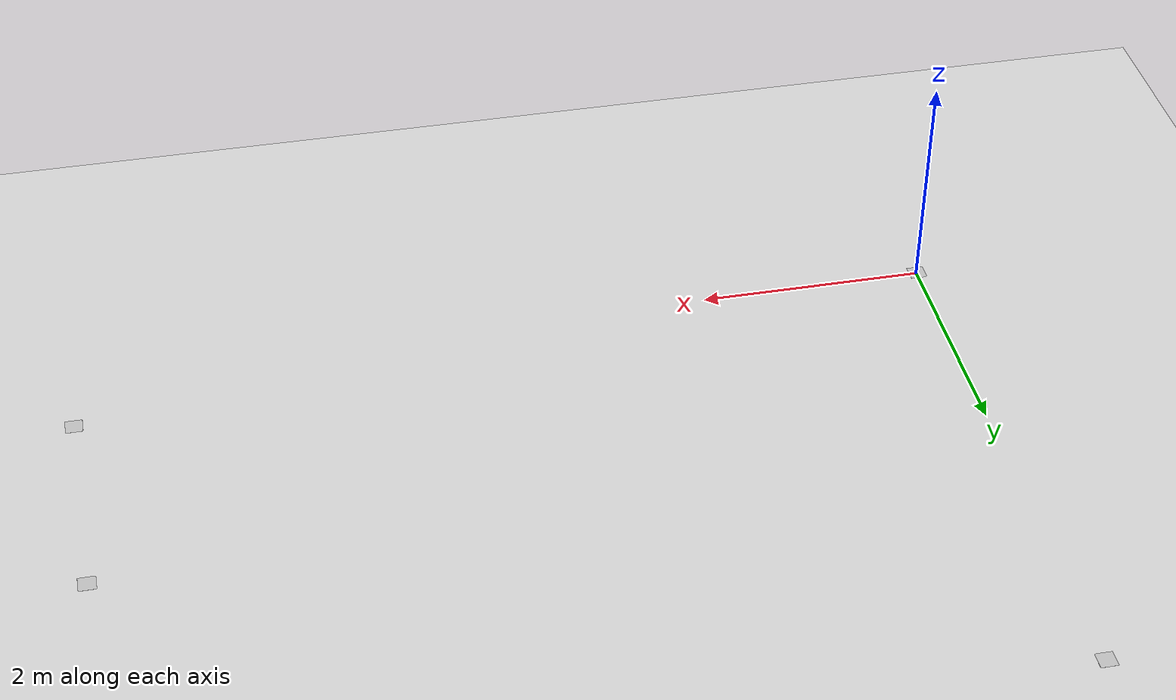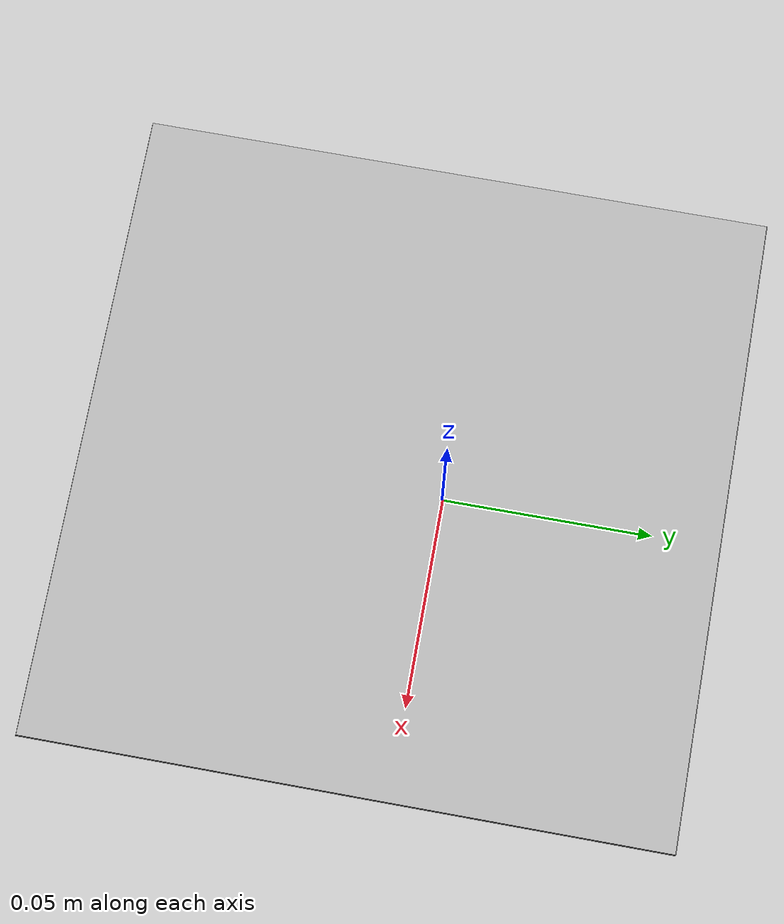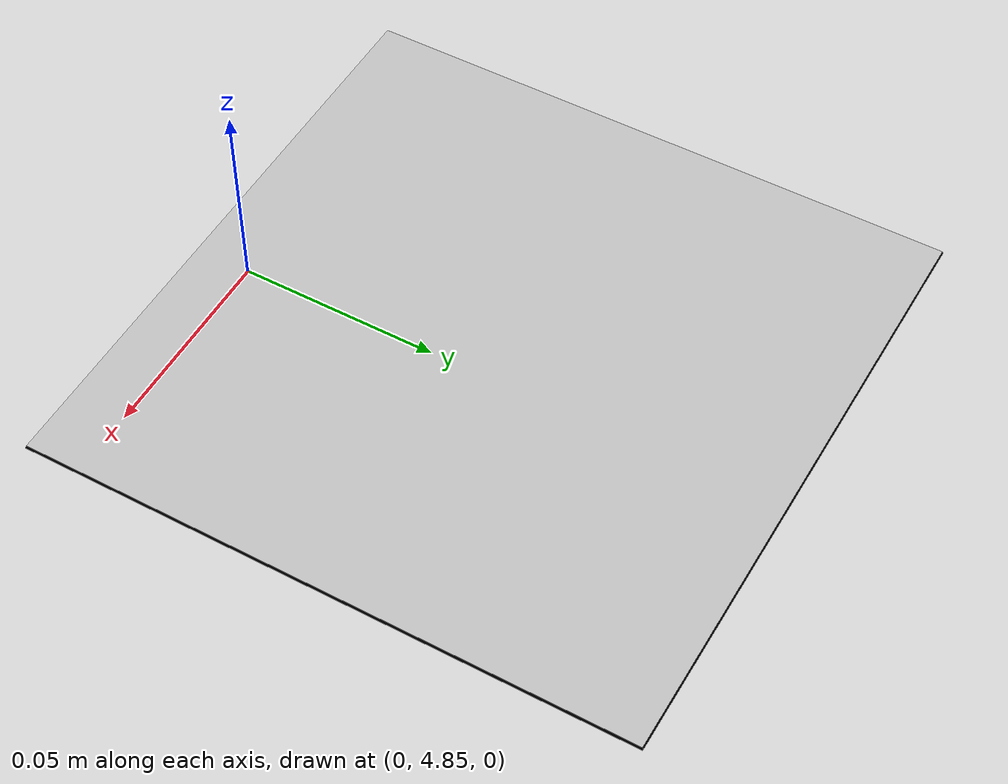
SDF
<sdf version='1.10'>
  <world name='poster'>
    <physics type='ode'>
      <max_step_size>0.0040000000000000001</max_step_size>
      <real_time_factor>1</real_time_factor>
      <real_time_update_rate>250</real_time_update_rate>
    </physics>
    <plugin name='gz::sim::systems::Physics' filename='gz-sim-physics-system'/>
    <plugin name='gz::sim::systems::UserCommands' filename='gz-sim-user-commands-system'/>
    <plugin name='gz::sim::systems::SceneBroadcaster' filename='gz-sim-scene-broadcaster-system'/>
    <plugin name='gz::sim::systems::Contact' filename='gz-sim-contact-system'/>
    <plugin name='gz::sim::systems::Imu' filename='gz-sim-imu-system'/>
    <plugin name='gz::sim::systems::AirPressure' filename='gz-sim-air-pressure-system'/>
    <plugin name='gz::sim::systems::AirSpeed' filename='gz-sim-air-speed-system'/>
    <plugin name='gz::sim::systems::ApplyLinkWrench' filename='gz-sim-apply-link-wrench-system'/>
    <plugin name='gz::sim::systems::NavSat' filename='gz-sim-navsat-system'/>
    <plugin name='gz::sim::systems::Sensors' filename='gz-sim-sensors-system'>
      <render_engine>ogre2</render_engine>
    </plugin>
    <gui fullscreen='false'>
      <plugin name='3D View' filename='MinimalScene'>
        <gz-gui>
          <title>3D View</title>
          <property type='bool' key='showTitleBar'>false</property>
          <property type='string' key='state'>docked</property>
        </gz-gui>
        <engine>ogre2</engine>
        <scene>scene</scene>
        <ambient_light>0.4 0.4 0.4</ambient_light>
        <background_color>0.8 0.8 0.8</background_color>
        <camera_pose>-6 0 6 0 0.5 0</camera_pose>
        <camera_clip>
          <near>0.25</near>
          <far>25000</far>
        </camera_clip>
      </plugin>
      <plugin name='Entity context menu' filename='EntityContextMenuPlugin'>
        <gz-gui>
          <property key='state' type='string'>floating</property>
          <property key='width' type='double'>5</property>
          <property key='height' type='double'>5</property>
          <property key='showTitleBar' type='bool'>false</property>
        </gz-gui>
      </plugin>
      <plugin name='Scene Manager' filename='GzSceneManager'>
        <gz-gui>
          <property key='resizable' type='bool'>false</property>
          <property key='width' type='double'>5</property>
          <property key='height' type='double'>5</property>
          <property key='state' type='string'>floating</property>
          <property key='showTitleBar' type='bool'>false</property>
        </gz-gui>
      </plugin>
      <plugin name='Interactive view control' filename='InteractiveViewControl'>
        <gz-gui>
          <property key='resizable' type='bool'>false</property>
          <property key='width' type='double'>5</property>
          <property key='height' type='double'>5</property>
          <property key='state' type='string'>floating</property>
          <property key='showTitleBar' type='bool'>false</property>
        </gz-gui>
      </plugin>
      <plugin name='Camera Tracking' filename='CameraTracking'>
        <gz-gui>
          <property key='resizable' type='bool'>false</property>
          <property key='width' type='double'>5</property>
          <property key='height' type='double'>5</property>
          <property key='state' type='string'>floating</property>
          <property key='showTitleBar' type='bool'>false</property>
        </gz-gui>
      </plugin>
      <plugin name='Marker manager' filename='MarkerManager'>
        <gz-gui>
          <property key='resizable' type='bool'>false</property>
          <property key='width' type='double'>5</property>
          <property key='height' type='double'>5</property>
          <property key='state' type='string'>floating</property>
          <property key='showTitleBar' type='bool'>false</property>
        </gz-gui>
      </plugin>
      <plugin name='Select Entities' filename='SelectEntities'>
        <gz-gui>
          <anchors target='Select entities'>
            <line own='right' target='right'/>
            <line own='top' target='top'/>
          </anchors>
          <property key='resizable' type='bool'>false</property>
          <property key='width' type='double'>5</property>
          <property key='height' type='double'>5</property>
          <property key='state' type='string'>floating</property>
          <property key='showTitleBar' type='bool'>false</property>
        </gz-gui>
      </plugin>
      <plugin name='Visualization Capabilities' filename='VisualizationCapabilities'>
        <gz-gui>
          <property key='resizable' type='bool'>false</property>
          <property key='width' type='double'>5</property>
          <property key='height' type='double'>5</property>
          <property key='state' type='string'>floating</property>
          <property key='showTitleBar' type='bool'>false</property>
        </gz-gui>
      </plugin>
      <plugin name='Spawn Entities' filename='Spawn'>
        <gz-gui>
          <anchors target='Select entities'>
            <line own='right' target='right'/>
            <line own='top' target='top'/>
          </anchors>
          <property key='resizable' type='bool'>false</property>
          <property key='width' type='double'>5</property>
          <property key='height' type='double'>5</property>
          <property key='state' type='string'>floating</property>
          <property key='showTitleBar' type='bool'>false</property>
        </gz-gui>
      </plugin>
      <plugin name='World control' filename='WorldControl'>
        <gz-gui>
          <title>World control</title>
          <property type='bool' key='showTitleBar'>0</property>
          <property type='bool' key='resizable'>0</property>
          <property type='double' key='height'>72</property>
          <property type='double' key='width'>121</property>
          <property type='double' key='z'>1</property>
          <property type='string' key='state'>floating</property>
          <anchors target='3D View'>
            <line own='left' target='left'/>
            <line own='bottom' target='bottom'/>
          </anchors>
        </gz-gui>
        <play_pause>1</play_pause>
        <step>1</step>
        <start_paused>1</start_paused>
      </plugin>
      <plugin name='World stats' filename='WorldStats'>
        <gz-gui>
          <title>World stats</title>
          <property type='bool' key='showTitleBar'>0</property>
          <property type='bool' key='resizable'>0</property>
          <property type='double' key='height'>110</property>
          <property type='double' key='width'>290</property>
          <property type='double' key='z'>1</property>
          <property type='string' key='state'>floating</property>
          <anchors target='3D View'>
            <line own='right' target='right'/>
            <line own='bottom' target='bottom'/>
          </anchors>
        </gz-gui>
        <sim_time>1</sim_time>
        <real_time>1</real_time>
        <real_time_factor>1</real_time_factor>
        <iterations>1</iterations>
      </plugin>
      <plugin name='Entity tree' filename='EntityTree'/>
    </gui>
    <gravity>0 0 -9.8000000000000007</gravity>
    <magnetic_field>6.0000000000000002e-06 2.3e-05 -4.1999999999999998e-05</magnetic_field>
    <atmosphere type='adiabatic'/>
    <scene>
      <grid>false</grid>
      <ambient>0.400000006 0.400000006 0.400000006 1</ambient>
      <background>0.699999988 0.699999988 0.699999988 1</background>
      <shadows>true</shadows>
    </scene>
    <spherical_coordinates>
      <surface_model>EARTH_WGS84</surface_model>
      <world_frame_orientation>ENU</world_frame_orientation>
      <latitude_deg>47.397971057728974</latitude_deg>
      <longitude_deg>8.5461637398001464</longitude_deg>
      <elevation>0</elevation>
      <heading_deg>0</heading_deg>
    </spherical_coordinates>
    <model name='ground_plane'>
      <static>true</static>
      <link name='link'>
        <collision name='collision'>
          <geometry>
            <plane>
              <normal>0 0 1</normal>
              <size>1 1</size>
            </plane>
          </geometry>
          <surface>
            <friction>
              <ode/>
            </friction>
            <bounce/>
            <contact/>
          </surface>
        </collision>
        <visual name='visual'>
          <geometry>
            <plane>
              <normal>0 0 1</normal>
              <size>100 100</size>
            </plane>
          </geometry>
          <material>
            <ambient>0.800000012 0.800000012 0.800000012 1</ambient>
            <diffuse>0.800000012 0.800000012 0.800000012 1</diffuse>
            <specular>0.800000012 0.800000012 0.800000012 1</specular>
          </material>
        </visual>
        <pose>0 0 0 0 0 0</pose>
        <inertial>
          <pose>0 0 0 0 0 0</pose>
          <mass>1</mass>
          <inertia>
            <ixx>1</ixx>
            <ixy>0</ixy>
            <ixz>0</ixz>
            <iyy>1</iyy>
            <iyz>0</iyz>
            <izz>1</izz>
          </inertia>
        </inertial>
        <enable_wind>false</enable_wind>
      </link>
      <pose>0 0 0 0 0 0</pose>
      <self_collide>false</self_collide>
    </model>
    <include>
      <uri>model://aruco_100</uri>
      <name>aruco_100</name>
      <pose>-0.0024154459870563347 -0.010033602726560995 0.01 0 0 0</pose>
    </include>
    <include>
      <uri>model://aruco_105</uri>
      <name>aruco_105</name>
      <pose>-0.0022312176168809037 4.9167917513903969 0.01 0 0 0</pose>
    </include>
    <include>
      <uri>model://aruco_400</uri>
      <name>aruco_400</name>
      <pose>7.6763508239216707 2.5513157015213661 0.01 0 0 0</pose>
    </include>
    <include>
      <uri>model://aruco_405</uri>
      <name>aruco_405</name>
      <pose>7.6815711241395253 0.62948504702508312 0.01 0 0 0</pose>
    </include>

    <light name='sunUTC' type='directional'>
      <pose>0 0 500 0 0 0</pose>
      <cast_shadows>true</cast_shadows>
      <intensity>1</intensity>
      <direction>0.001 0.625 -0.78000000000000003</direction>
      <diffuse>0.903999984 0.903999984 0.903999984 1</diffuse>
      <specular>0.270999998 0.270999998 0.270999998 1</specular>
      <attenuation>
        <range>2000</range>
        <linear>0</linear>
        <constant>1</constant>
        <quadratic>0</quadratic>
      </attenuation>
      <spot>
        <inner_angle>0</inner_angle>
        <outer_angle>0</outer_angle>
        <falloff>0</falloff>
      </spot>
    </light>
  </world>
</sdf>

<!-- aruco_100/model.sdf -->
<sdf version="1.6">
  <model name="aruco_100">
    <pose>0 0 0.01 0 0 0</pose> <!-- Elevacion de 1 cm-->
    <static>true</static>
    <link name="link">

      <!-- Visualización del modelo -->
      <visual name="visual">
        <geometry>
          <mesh>
            <uri>model://aruco_100/meshes/aruco_100.dae</uri>
            <scale>1 1 1</scale>
          </mesh>
        </geometry>
      </visual>

      <!-- Colisión usando el mismo modelo DAE -->

    </link>
  </model>
</sdf>

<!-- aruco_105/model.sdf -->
<sdf version="1.6">
  <model name="aruco_105">
    <pose>0 0 0.01 0 0 0</pose> <!-- Elevacion de 1 cm-->
    <static>true</static>
    <link name="link">

      <!-- Visualización del modelo -->
      <visual name="visual">
        <geometry>
          <mesh>
            <uri>model://aruco_105/meshes/aruco_15_x_15.dae</uri>
            <scale>1 1 1</scale>
          </mesh>
        </geometry>
      </visual>

      <!-- Colisión usando el mismo modelo DAE -->

    </link>
  </model>
</sdf>

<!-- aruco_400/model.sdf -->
<sdf version="1.6">
  <model name="aruco_400">
    <pose>0 0 0.01 0 0 0</pose> <!-- Elevacion de 1 cm-->
    <static>true</static>
    <link name="link">

      <!-- Visualización del modelo -->
      <visual name="visual">
        <geometry>
          <mesh>
            <uri>model://aruco_400/meshes/aruco_15_x_15.dae</uri>
            <scale>1 1 1</scale>
          </mesh>
        </geometry>
      </visual>

      <!-- Colisión usando el mismo modelo DAE -->

    </link>
  </model>
</sdf>

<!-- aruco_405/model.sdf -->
<sdf version="1.6">
  <model name="aruco_405">
    <pose>0 0 0.01 0 0 0</pose> <!-- Elevacion de 1 cm-->
    <static>true</static>
    <link name="link">

      <!-- Visualización del modelo -->
      <visual name="visual">
        <geometry>
          <mesh>
            <uri>model://aruco_405/meshes/aruco_15_x_15.dae</uri>
            <scale>1 1 1</scale>
          </mesh>
        </geometry>
      </visual>

      <!-- Colisión usando el mismo modelo DAE -->

    </link>
  </model>
</sdf>
